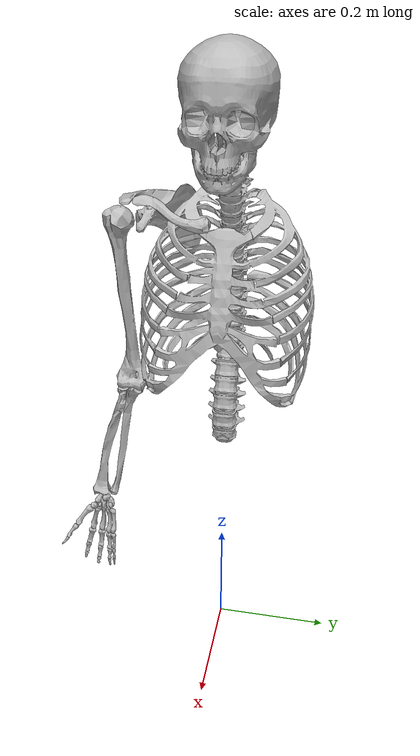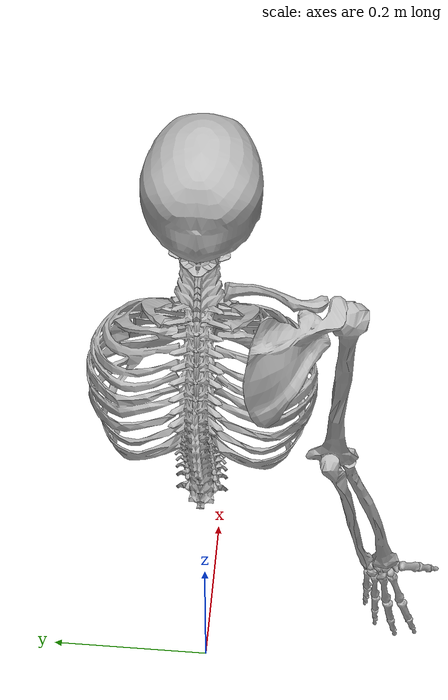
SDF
<?xml version="1.0" ?>
<sdf version="1.5">
  <model name="arm26">
    <link name="base">m
      <pose frame="">0.0 0.0 0.8 1.5708 0.0 0.0</pose>
      <inertial>
        <mass>0.0001</mass>
        <pose>0.0 0.0 0.0 0.0 0.0 0.0</pose>
        <inertia>
          <ixx>0</ixx>
          <ixy>0</ixy>
          <ixz>0</ixz>
          <iyy>0</iyy>
          <iyz>0</iyz>
          <izz>0</izz>
        </inertia>
      </inertial>
      <visual name="ground_ribs">
        <pose> -0 0 -0 0 0 0</pose>
        <geometry>
          <mesh>
            <uri>model://arm26/meshes/visuals/ground_ribs.dae</uri>
            <scale> 1 1 1</scale>
          </mesh>
        </geometry>
      </visual>
      <visual name="ground_spine">
        <pose> -0 0 -0 0 0 0</pose>
        <geometry>
          <mesh>
            <uri>model://arm26/meshes/visuals/ground_spine.dae</uri>
            <scale> 1 1 1</scale>
          </mesh>
        </geometry>
      </visual>
      <visual name="ground_skull">
        <pose> -0 0 -0 0 0 0</pose>
        <geometry>
          <mesh>
            <uri>model://arm26/meshes/visuals/ground_skull.dae</uri>
            <scale> 1 1 1</scale>
          </mesh>
        </geometry>
      </visual>
      <visual name="ground_jaw">
        <pose> -0 0 -0 0 0 0</pose>
        <geometry>
          <mesh>
            <uri>model://arm26/meshes/visuals/ground_jaw.dae</uri>
            <scale> 1 1 1</scale>
          </mesh>
        </geometry>
      </visual>
      <visual name="ground_r_clavicle">
        <pose> -0 0 -0 0 0 0</pose>
        <geometry>
          <mesh>
            <uri>model://arm26/meshes/visuals/ground_r_clavicle.dae</uri>
            <scale> 1 1 1</scale>
          </mesh>
        </geometry>
      </visual>
      <visual name="ground_r_scapula">
        <pose> -0 0 -0 0 0 0</pose>
        <geometry>
          <mesh>
            <uri>model://arm26/meshes/visuals/ground_r_scapula.dae</uri>
            <scale> 1 1 1</scale>
          </mesh>
        </geometry>
      </visual>
    </link>
    <link name="r_humerus">
      <pose frame="">-0.017545 -0.17 0.793 1.5708 0.0 0.0</pose>
      <inertial>
        <mass>1.864572</mass>
        <pose>0.0 0.0 0.0 0.0 0.0 0.0</pose>
        <inertia>
          <ixx>0.01481</ixx>
          <ixy>0</ixy>
          <ixz>0</ixz>
          <iyy>0.004551</iyy>
          <iyz>0</iyz>
          <izz>0.013193</izz>
        </inertia>
      </inertial>
      <visual name="arm_r_humerus">
        <pose> -0 0 -0 0 0 0</pose>
        <geometry>
          <mesh>
            <uri>model://arm26/meshes/visuals/arm_r_humerus.dae</uri>
            <scale> 1 1 1</scale>
          </mesh>
        </geometry>
      </visual>
    </link>
    <link name="r_ulna_radius_hand">
      <pose frame="">-0.011445 -0.1577 0.5026 1.5708 0.0 0.0</pose>
      <inertial>
        <mass>1.534315</mass>
        <pose>0.0 0.0 0.0 0.0 0.0 0.0</pose>
        <inertia>
          <ixx>0.019281</ixx>
          <ixy>0</ixy>
          <ixz>0</ixz>
          <iyy>0.001571</iyy>
          <iyz>0</iyz>
          <izz>0.020062</izz>
        </inertia>
      </inertial>
      <visual name="arm_r_ulna">
        <pose> -0 0 -0 0 0 0</pose>
        <geometry>
          <mesh>
            <uri>model://arm26/meshes/visuals/arm_r_ulna.dae</uri>
            <scale> 1 1 1</scale>
          </mesh>
        </geometry>
      </visual>
      <visual name="arm_r_radius">
        <pose> -0 0 -0 0 0 0</pose>
        <geometry>
          <mesh>
            <uri>model://arm26/meshes/visuals/arm_r_radius.dae</uri>
            <scale> 1 1 1</scale>
          </mesh>
        </geometry>
      </visual>
      <visual name="arm_r_lunate">
        <pose> -0 0 -0 0 0 0</pose>
        <geometry>
          <mesh>
            <uri>model://arm26/meshes/visuals/arm_r_lunate.dae</uri>
            <scale> 1 1 1</scale>
          </mesh>
        </geometry>
      </visual>
      <visual name="arm_r_scaphoid">
        <pose> -0 0 -0 0 0 0</pose>
        <geometry>
          <mesh>
            <uri>model://arm26/meshes/visuals/arm_r_scaphoid.dae</uri>
            <scale> 1 1 1</scale>
          </mesh>
        </geometry>
      </visual>
      <visual name="arm_r_pisiform">
        <pose> -0 0 -0 0 0 0</pose>
        <geometry>
          <mesh>
            <uri>model://arm26/meshes/visuals/arm_r_pisiform.dae</uri>
            <scale> 1 1 1</scale>
          </mesh>
        </geometry>
      </visual>
      <visual name="arm_r_triquetrum">
        <pose> -0 0 -0 0 0 0</pose>
        <geometry>
          <mesh>
            <uri>model://arm26/meshes/visuals/arm_r_triquetrum.dae</uri>
            <scale> 1 1 1</scale>
          </mesh>
        </geometry>
      </visual>
      <visual name="arm_r_capitate">
        <pose> -0 0 -0 0 0 0</pose>
        <geometry>
          <mesh>
            <uri>model://arm26/meshes/visuals/arm_r_capitate.dae</uri>
            <scale> 1 1 1</scale>
          </mesh>
        </geometry>
      </visual>
      <visual name="arm_r_trapezium">
        <pose> -0 0 -0 0 0 0</pose>
        <geometry>
          <mesh>
            <uri>model://arm26/meshes/visuals/arm_r_trapezium.dae</uri>
            <scale> 1 1 1</scale>
          </mesh>
        </geometry>
      </visual>
      <visual name="arm_r_trapezoid">
        <pose> -0 0 -0 0 0 0</pose>
        <geometry>
          <mesh>
            <uri>model://arm26/meshes/visuals/arm_r_trapezoid.dae</uri>
            <scale> 1 1 1</scale>
          </mesh>
        </geometry>
      </visual>
      <visual name="arm_r_hamate">
        <pose> -0 0 -0 0 0 0</pose>
        <geometry>
          <mesh>
            <uri>model://arm26/meshes/visuals/arm_r_hamate.dae</uri>
            <scale> 1 1 1</scale>
          </mesh>
        </geometry>
      </visual>
      <visual name="arm_r_1mc">
        <pose> -0 0 -0 0 0 0</pose>
        <geometry>
          <mesh>
            <uri>model://arm26/meshes/visuals/arm_r_1mc.dae</uri>
            <scale> 1 1 1</scale>
          </mesh>
        </geometry>
      </visual>
      <visual name="arm_r_2mc">
        <pose> -0 0 -0 0 0 0</pose>
        <geometry>
          <mesh>
            <uri>model://arm26/meshes/visuals/arm_r_2mc.dae</uri>
            <scale> 1 1 1</scale>
          </mesh>
        </geometry>
      </visual>
      <visual name="arm_r_3mc">
        <pose> -0 0 -0 0 0 0</pose>
        <geometry>
          <mesh>
            <uri>model://arm26/meshes/visuals/arm_r_3mc.dae</uri>
            <scale> 1 1 1</scale>
          </mesh>
        </geometry>
      </visual>
      <visual name="arm_r_4mc">
        <pose> -0 0 -0 0 0 0</pose>
        <geometry>
          <mesh>
            <uri>model://arm26/meshes/visuals/arm_r_4mc.dae</uri>
            <scale> 1 1 1</scale>
          </mesh>
        </geometry>
      </visual>
      <visual name="arm_r_5mc">
        <pose> -0 0 -0 0 0 0</pose>
        <geometry>
          <mesh>
            <uri>model://arm26/meshes/visuals/arm_r_5mc.dae</uri>
            <scale> 1 1 1</scale>
          </mesh>
        </geometry>
      </visual>
      <visual name="arm_r_thumbprox">
        <pose> -0 0 -0 0 0 0</pose>
        <geometry>
          <mesh>
            <uri>model://arm26/meshes/visuals/arm_r_thumbprox.dae</uri>
            <scale> 1 1 1</scale>
          </mesh>
        </geometry>
      </visual>
      <visual name="arm_r_thumbdist">
        <pose> -0 0 -0 0 0 0</pose>
        <geometry>
          <mesh>
            <uri>model://arm26/meshes/visuals/arm_r_thumbdist.dae</uri>
            <scale> 1 1 1</scale>
          </mesh>
        </geometry>
      </visual>
      <visual name="arm_r_2proxph">
        <pose> -0 0 -0 0 0 0</pose>
        <geometry>
          <mesh>
            <uri>model://arm26/meshes/visuals/arm_r_2proxph.dae</uri>
            <scale> 1 1 1</scale>
          </mesh>
        </geometry>
      </visual>
      <visual name="arm_r_2midph">
        <pose> -0 0 -0 0 0 0</pose>
        <geometry>
          <mesh>
            <uri>model://arm26/meshes/visuals/arm_r_2midph.dae</uri>
            <scale> 1 1 1</scale>
          </mesh>
        </geometry>
      </visual>
      <visual name="arm_r_2distph">
        <pose> -0 0 -0 0 0 0</pose>
        <geometry>
          <mesh>
            <uri>model://arm26/meshes/visuals/arm_r_2distph.dae</uri>
            <scale> 1 1 1</scale>
          </mesh>
        </geometry>
      </visual>
      <visual name="arm_r_3proxph">
        <pose> -0 0 -0 0 0 0</pose>
        <geometry>
          <mesh>
            <uri>model://arm26/meshes/visuals/arm_r_3proxph.dae</uri>
            <scale> 1 1 1</scale>
          </mesh>
        </geometry>
      </visual>
      <visual name="arm_r_3midph">
        <pose> -0 0 -0 0 0 0</pose>
        <geometry>
          <mesh>
            <uri>model://arm26/meshes/visuals/arm_r_3midph.dae</uri>
            <scale> 1 1 1</scale>
          </mesh>
        </geometry>
      </visual>
      <visual name="arm_r_3distph">
        <pose> -0 0 -0 0 0 0</pose>
        <geometry>
          <mesh>
            <uri>model://arm26/meshes/visuals/arm_r_3distph.dae</uri>
            <scale> 1 1 1</scale>
          </mesh>
        </geometry>
      </visual>
      <visual name="arm_r_4proxph">
        <pose> -0 0 -0 0 0 0</pose>
        <geometry>
          <mesh>
            <uri>model://arm26/meshes/visuals/arm_r_4proxph.dae</uri>
            <scale> 1 1 1</scale>
          </mesh>
        </geometry>
      </visual>
      <visual name="arm_r_4midph">
        <pose> -0 0 -0 0 0 0</pose>
        <geometry>
          <mesh>
            <uri>model://arm26/meshes/visuals/arm_r_4midph.dae</uri>
            <scale> 1 1 1</scale>
          </mesh>
        </geometry>
      </visual>
      <visual name="arm_r_4distph">
        <pose> -0 0 -0 0 0 0</pose>
        <geometry>
          <mesh>
            <uri>model://arm26/meshes/visuals/arm_r_4distph.dae</uri>
            <scale> 1 1 1</scale>
          </mesh>
        </geometry>
      </visual>
      <visual name="arm_r_5proxph">
        <pose> -0 0 -0 0 0 0</pose>
        <geometry>
          <mesh>
            <uri>model://arm26/meshes/visuals/arm_r_5proxph.dae</uri>
            <scale> 1 1 1</scale>
          </mesh>
        </geometry>
      </visual>
      <visual name="arm_r_5midph">
        <pose> -0 0 -0 0 0 0</pose>
        <geometry>
          <mesh>
            <uri>model://arm26/meshes/visuals/arm_r_5midph.dae</uri>
            <scale> 1 1 1</scale>
          </mesh>
        </geometry>
      </visual>
      <visual name="arm_r_5distph">
        <pose> -0 0 -0 0 0 0</pose>
        <geometry>
          <mesh>
            <uri>model://arm26/meshes/visuals/arm_r_5distph.dae</uri>
            <scale> 1 1 1</scale>
          </mesh>
        </geometry>
      </visual>
    </link>
    <joint name="offset" type="fixed">
      <parent>world</parent>
      <child>base</child>
    </joint>
    <joint name="r_shoulder" type="revolute">
      <parent>base</parent>
      <child>r_humerus</child>
      <axis>
        <xyz>0 0 1</xyz>
        <dynamics>
          <damping>1.e-6</damping>
        </dynamics>
        <limit>
          <lower>-1.57079633</lower>
          <upper>3.14159265</upper>
          <stiffness>100</stiffness>
          <dissipation>1.e-2</dissipation>
        </limit>
      </axis>
    </joint>
    <joint name="r_elbow" type="revolute">
      <parent>r_humerus</parent>
      <child>r_ulna_radius_hand</child>
      <axis>
        <xyz>0 0 1</xyz>
        <dynamics>
          <damping>1.e-6</damping>
        </dynamics>
        <limit>
          <lower>0</lower>
          <upper>2.26892803</upper>
          <stiffness>100</stiffness>
          <dissipation>1.e-2</dissipation>
        </limit>
      </axis>
    </joint>
    <plugin filename="libcardsflow_gazebo_plugin.so" name="cardsflow_gazebo_plugin"/>
  </model>
</sdf>
